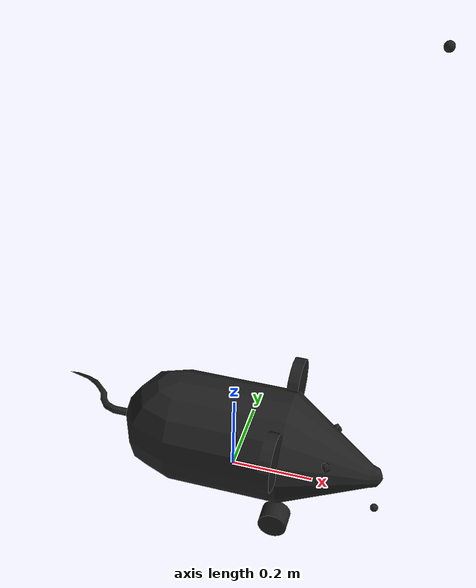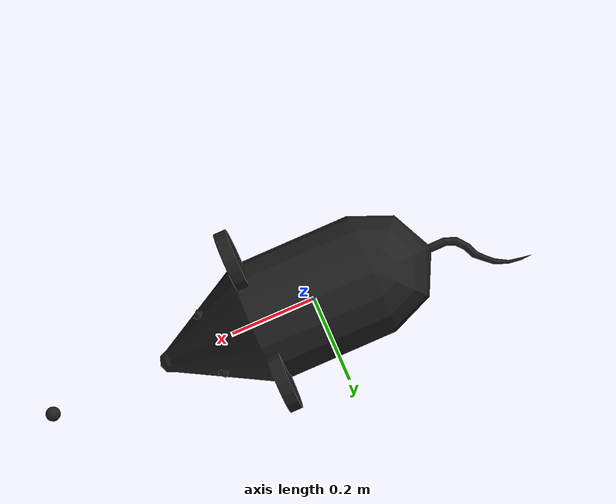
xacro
<robot name="mouseA" xmlns:xacro="http://ros.org/wiki/xacro">

	<gazebo>
        <plugin name="gazebo_ros_control" filename="libgazebo_ros_control.so">
			<legacyModeNS>true</legacyModeNS>
        </plugin>
    </gazebo>

	<gazebo>
        <plugin name="p3d_base_controller" filename="libgazebo_ros_p3d.so">
            <alwaysOn>true</alwaysOn>
            <updateRate>50.0</updateRate>
            <bodyName>base_link</bodyName>
            <topicName>odom</topicName>
            <gaussianNoise>0.01</gaussianNoise>
            <frameName>world</frameName>
            <xyzOffsets>0 0 0</xyzOffsets>
            <rpyOffsets>0 0 0</rpyOffsets>
        </plugin>
    </gazebo>

	<!--  Base Link -->

	<link name="base_link">
        <inertial>
            <origin xyz="0 0 0" rpy="0 0 0"/>
            <mass value="10" />
            <inertia ixx="0.283333333333" ixy="0.0" ixz="0.0" iyy="0.483333333333" iyz="0.0" izz="0.616666666667" />
        </inertial>
        <collision>
            <origin rpy="0 0 0" xyz="0 0 0.126"/>
            <geometry>
                <box size="0.7 0.5 0.3"/>
            </geometry>
        </collision>
	    <visual>
	      <geometry>
			<mesh filename="package://mouse_description/meshes/mouse.dae"/>
	      </geometry>
	    </visual>
    </link>

	<gazebo reference="base_link">
        <kp>1000000.0</kp>
        <kd>1.0</kd>
        <mu1>1000000.0</mu1>
        <mu2>1000000.0</mu2>
        <material>Gazebo/FlatBlack</material>
    </gazebo>

	<!-- Right Wheel  -->

	<link name="right_wheel">
      <visual>
        <origin rpy="1.57075 0 0" xyz="0 0 0"/>
        <geometry>
          <cylinder length="0.05" radius="0.035"/>
        </geometry>
        <material name="black"/>
        <origin rpy="0 0 0" xyz="0 0 0"/>
      </visual>
	  <collision>
	    <origin rpy="1.57075 0 0" xyz="0 0 0"/>
	    <geometry>
	      <cylinder length="0.05" radius="0.035"/>
	    </geometry>
      </collision>
      <inertial>
	    <mass value="1"/>
	    <inertia ixx="0.000514583333333" ixy="0.0" ixz="0.0" iyy="0.000514583333333" iyz="0.0" izz="0.0006125" />
	  </inertial>
    </link>

    <joint name="right_wheel_joint" type="continuous">
      <parent link="base_link"/>
      <child link="right_wheel"/>
	  <limit effort="200" velocity="1000.0" />
      <origin rpy="0 0 0" xyz="0.133333333333 -0.1 -0.055"/>
	  <axis rpy="0 0 0" xyz="0 1 0"/>
    </joint>

	<gazebo reference="right_wheel">
	  <mu1 value="200.0"/>
	  <mu2 value="100.0"/>
	  <kp value="10000000.0" />
	  <kd value="1.0" />
	  <material>Gazebo/Gold</material>
	</gazebo>

	<transmission name="right_wheel_trans">
	  <type>transmission_interface/SimpleTransmission</type>
	  <actuator name="right_wheel_motor">
		  <mechanicalReduction>1</mechanicalReduction>
		  <hardwareInterface>hardware_interface/EffortJointInterface</hardwareInterface>
	  </actuator>
	  <joint name="right_wheel_joint">
		<hardwareInterface>hardware_interface/EffortJointInterface</hardwareInterface>
	  </joint>
	</transmission>

	<!--  Left Wheel  -->

	<link name="left_wheel">
	  <visual>
		<origin rpy="1.57075 0 0" xyz="0 0 0"/>
		<geometry>
		  <cylinder length="0.05" radius="0.035"/>
		</geometry>
		<material name="black"/>
	  </visual>
	  <collision>
	    <origin rpy="1.57075 0 0" xyz="0 0 0"/>
	    <geometry>
	      <cylinder length="0.05" radius="0.035"/>
	    </geometry>
      </collision>
      <inertial>
	    <mass value="1"/>
	    <inertia ixx="0.000514583333333" ixy="0.0" ixz="0.0" iyy="0.000514583333333" iyz="0.0" izz="0.0006125" />
	  </inertial>
	</link>

	<joint name="left_wheel_joint" type="continuous">
	  <parent link="base_link"/>
	  <child link="left_wheel"/>
	  <limit effort="200" velocity="1000.0" />
	  <origin rpy="0 0 0" xyz="0.133333333333 0.1 -0.055"/>
	  <axis rpy="0 0 0" xyz="0 1 0"/>
	</joint>

	<gazebo reference="left_wheel">
	  <mu1 value="200.0"/>
	  <mu2 value="100.0"/>
	  <kp value="10000000.0" />
	  <kd value="1.0" />
	  <material>Gazebo/Gold</material>
	</gazebo>

	<transmission name="left_wheel_trans">
	  <type>transmission_interface/SimpleTransmission</type>
	  <actuator name="left_wheel_motor">
		<mechanicalReduction>1</mechanicalReduction>
		<hardwareInterface>hardware_interface/EffortJointInterface</hardwareInterface>
	  </actuator>
	  <joint name="left_wheel_joint">
		<hardwareInterface>hardware_interface/EffortJointInterface</hardwareInterface>
	  </joint>
	</transmission>

	<!--  Back  -->

	<link name="back_wheel">
	  <visual>
		<geometry>
		  <sphere radius="0.035"/>
		</geometry>
		<material name="black"/>
	  </visual>
	  <collision>
	    <geometry>
	      <sphere radius="0.035"/>
	    </geometry>
      </collision>
      <inertial>
	    <mass value="1"/>
	    <inertia ixx="0.000514583333333" ixy="0.0" ixz="0.0" iyy="0.000514583333333" iyz="0.0" izz="0.0006125" />
	  </inertial>
	</link>

	<joint name="back_wheel_joint" type="continuous">
	  <parent link="base_link"/>
	  <child link="back_wheel"/>
	  <limit effort="200" velocity="1000.0" />
	  <origin rpy="0 0 0" xyz="-0.15 0 -0.055"/>
	  <axis rpy="0 0 0" xyz="0 1 0"/>
	</joint>

	<gazebo reference="back_wheel">
      <mu1 value="0.0"/>
      <mu2 value="0.0"/>
      <kp value="10000000.0" />
      <kd value="1.0" />
      <material>Gazebo/Gold</material>
    </gazebo>

	<transmission name="back_wheel_trans">
      <type>transmission_interface/SimpleTransmission</type>
      <actuator name="back_wheel_motor">
        <mechanicalReduction>1</mechanicalReduction>
		<hardwareInterface>hardware_interface/EffortJointInterface</hardwareInterface>
      </actuator>
      <joint name="back_wheel_joint">
        <hardwareInterface>hardware_interface/EffortJointInterface</hardwareInterface>
      </joint>
    </transmission>

	<!--  Sensors  -->
	<link name="mouseA_sensor">
		<visual>
			<origin xyz="0 0 0"/>
			<geometry>
				<sphere radius="0.01"/>
			</geometry>
			<material name="black"/>
		</visual>
	</link>

	<joint name="sensor_joint" type="fixed">
		<parent link="base_link"/>
		<child link="mouseA_sensor"/>
		<origin rpy="0 0 0" xyz="0.36 0 1.1"/>
	</joint>

	<gazebo reference="mouseA_sensor">
		<sensor type="ray" name="det_wall_ray_sensor">
			<pose>0 0 0 0 0 0</pose>
			<visualize>true</visualize>
			<update_rate>40</update_rate>
			<ray>
				<scan>
					<horizontal>
						<samples>200</samples>
						<resolution>1</resolution>
						<min_angle>-1.9198621772</min_angle>
						<max_angle>1.9198621772</max_angle>
					</horizontal>
				</scan>
				<range>
					<min>0.10</min>
					<max>2.5</max>
					<resolution>1</resolution>
				</range>
				<noise>
					<type>gaussian</type>
					<mean>0.0</mean>
					<stddev>0.01</stddev>
				</noise>
			</ray>
			<plugin name="gazebo_ros_mouseA_laser_controller" filename="libgazebo_ros_laser.so">
				<robotNamespace></robotNamespace>
				<topicName>/mouseA/laser/wall_scan</topicName>
				<frameName>mouseA_sensor</frameName>
			</plugin>
		</sensor>
	</gazebo>

	<link name="mouseA_sensor_cat">
		<visual>
			<origin xyz="0 0 0"/>
			<geometry>
				<sphere radius="0.01"/>
			</geometry>
			<material name="black"/>
		</visual>
	</link>

	<joint name="sensor_cat_joint" type="fixed">
		<parent link="base_link"/>
		<child link="mouseA_sensor_cat"/>
		<origin rpy="0 0 0" xyz="0.36 0 -0.05"/>
	</joint>

	<gazebo reference="mouseA_sensor_cat">
		<sensor type="ray" name="det_cat_ray_sensor">
			<pose>0 0 0 0 0 0</pose>
			<visualize>true</visualize>
			<update_rate>40</update_rate>
			<ray>
				<scan>
					<horizontal>
						<samples>200</samples>
						<resolution>1</resolution>
						<min_angle>-1.9198621772</min_angle>
						<max_angle>1.9198621772</max_angle>
					</horizontal>
				</scan>
				<range>
					<min>0.10</min>
					<max>2.5</max>
					<resolution>1</resolution>
				</range>
				<noise>
					<type>gaussian</type>
					<mean>0.0</mean>
					<stddev>0.01</stddev>
				</noise>
			</ray>
			<plugin name="gazebo_ros_mouseA_laser_controller" filename="libgazebo_ros_laser.so">
				<robotNamespace></robotNamespace>
				<topicName>/mouseA/laser/cat_scan</topicName>
				<frameName>mouseA_sensor</frameName>
			</plugin>
		</sensor>
	</gazebo>
</robot>
